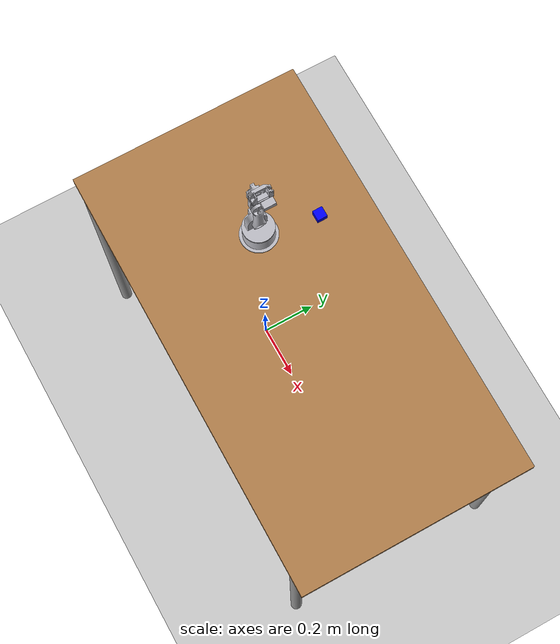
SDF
<sdf version="1.7">
 <world name="default">
  <light name="sun" type="directional">
   <pose>0 0 10 0 -0 0</pose>
   <diffuse>0.8 0.8 0.8 1</diffuse>
   <specular>0.2 0.2 0.2 1</specular>
   <attenuation>
    <range>1000</range>
    <constant>0.9</constant>
    <linear>0.01</linear>
    <quadratic>0.001</quadratic>
   </attenuation>
   <direction>-0.5 0.1 -0.9</direction>
   <spot><inner_angle>0</inner_angle><outer_angle>0</outer_angle><falloff>0</falloff></spot>
  </light>
  <model name="ground_plane">
   <static>1</static>
   <link name="link">
    <collision name="collision">
     <geometry><plane><normal>0 0 1</normal><size>100 100</size></plane></geometry>
     <surface><friction><ode><mu>100</mu><mu2>50</mu2></ode></friction></surface>
    </collision>
    <visual name="visual">
     <cast_shadows>0</cast_shadows>
     <geometry><plane><normal>0 0 1</normal><size>100 100</size></plane></geometry>
     <material>
      <script><uri>file://media/materials/scripts/gazebo.material</uri><name>Gazebo/Grey</name></script>
     </material>
    </visual>
   </link>
  </model>
  <gravity>0 0 -9.8</gravity>
  <magnetic_field>6e-06 2.3e-05 -4.2e-05</magnetic_field>
  <atmosphere type="adiabatic"/>
  <physics name="default_physics" default="0" type="ode">
   <max_step_size>0.001</max_step_size>
   <real_time_factor>1</real_time_factor>
   <real_time_update_rate>1000</real_time_update_rate>
  </physics>
  <scene><ambient>0.4 0.4 0.4 1</ambient><background>0.7 0.7 0.7 1</background><shadows>1</shadows></scene>
  <audio><device>default</device></audio>
  <spherical_coordinates>
   <surface_model>EARTH_WGS84</surface_model>
   <latitude_deg>0</latitude_deg>
   <longitude_deg>0</longitude_deg>
   <elevation>0</elevation>
   <heading_deg>0</heading_deg>
  </spherical_coordinates>
  <model name="table">
   <static>1</static>
   <link name="link">
    <collision name="surface">
     <pose>0 0 1 0 -0 0</pose>
     <geometry><box><size>1.5 0.8 0.03</size></box></geometry>
     <surface><friction><ode><mu>0.6</mu><mu2>0.6</mu2></ode></friction></surface>
    </collision>
    <visual name="visual1">
     <pose>0 0 1 0 -0 0</pose>
     <geometry><box><size>1.5 0.8 0.03</size></box></geometry>
     <material>
      <script><uri>file://media/materials/scripts/gazebo.material</uri><name>Gazebo/Wood</name></script>
     </material>
    </visual>
    <collision name="front_left_leg">
     <pose>0.68 0.38 0.5 0 -0 0</pose>
     <geometry><cylinder><radius>0.02</radius><length>1</length></cylinder></geometry>
    </collision>
    <visual name="front_left_leg">
     <pose>0.68 0.38 0.5 0 -0 0</pose>
     <geometry><cylinder><radius>0.02</radius><length>1</length></cylinder></geometry>
     <material>
      <script><uri>file://media/materials/scripts/gazebo.material</uri><name>Gazebo/Grey</name></script>
     </material>
    </visual>
    <collision name="front_right_leg">
     <pose>0.68 -0.38 0.5 0 -0 0</pose>
     <geometry><cylinder><radius>0.02</radius><length>1</length></cylinder></geometry>
    </collision>
    <visual name="front_right_leg">
     <pose>0.68 -0.38 0.5 0 -0 0</pose>
     <geometry><cylinder><radius>0.02</radius><length>1</length></cylinder></geometry>
     <material>
      <script><uri>file://media/materials/scripts/gazebo.material</uri><name>Gazebo/Grey</name></script>
     </material>
    </visual>
    <collision name="back_right_leg">
     <pose>-0.68 -0.38 0.5 0 -0 0</pose>
     <geometry><cylinder><radius>0.02</radius><length>1</length></cylinder></geometry>
    </collision>
    <visual name="back_right_leg">
     <pose>-0.68 -0.38 0.5 0 -0 0</pose>
     <geometry><cylinder><radius>0.02</radius><length>1</length></cylinder></geometry>
     <material>
      <script><uri>file://media/materials/scripts/gazebo.material</uri><name>Gazebo/Grey</name></script>
     </material>
    </visual>
    <collision name="back_left_leg">
     <pose>-0.68 0.38 0.5 0 -0 0</pose>
     <geometry><cylinder><radius>0.02</radius><length>1</length></cylinder></geometry>
    </collision>
    <visual name="back_left_leg">
     <pose>-0.68 0.38 0.5 0 -0 0</pose>
     <geometry><cylinder><radius>0.02</radius><length>1</length></cylinder></geometry>
     <material>
      <script><uri>file://media/materials/scripts/gazebo.material</uri><name>Gazebo/Grey</name></script>
     </material>
    </visual>
   </link>
   <pose>0.286971 -0.023322 0 0 -0 0</pose>
  </model>
  <model name="unit_box_blue">
   <link name="link">
    <inertial>
     <mass>1</mass>
     <inertia>
      <ixx>0.166667</ixx>
      <ixy>0</ixy>
      <ixz>0</ixz>
      <iyy>0.166667</iyy>
      <iyz>0</iyz>
      <izz>0.166667</izz>
     </inertia>
    </inertial>
    <visual name="visual">
     <geometry><box><size>0.036269 0.034595 0.020419</size></box></geometry>
     <material>
      <script><name>Gazebo/Grey</name><uri>file://media/materials/scripts/gazebo.material</uri></script>
      <ambient>0 0 1 0</ambient>
      <shader type="vertex"><normal_map>__default__</normal_map></shader>
      <diffuse>0.7 0.7 0.7 1</diffuse>
      <specular>0.01 0.01 0.01 1</specular>
      <emissive>0 0 0 1</emissive>
     </material>
    </visual>
    <collision name="collision">
     <geometry><box><size>0.036269 0.034595 0.020419</size></box></geometry>
     <surface>
      <friction>
       <ode><mu>1</mu><mu2>1</mu2><fdir1>0 0 0</fdir1><slip1>0</slip1><slip2>0</slip2></ode>
       <torsional>
        <coefficient>1</coefficient>
        <patch_radius>0</patch_radius>
        <surface_radius>0</surface_radius>
        <use_patch_radius>1</use_patch_radius>
        <ode><slip>0</slip></ode>
       </torsional>
      </friction>
      <bounce><restitution_coefficient>0</restitution_coefficient><threshold>1e+06</threshold></bounce>
      <contact>
       <collide_without_contact>0</collide_without_contact>
       <collide_without_contact_bitmask>1</collide_without_contact_bitmask>
       <collide_bitmask>1</collide_bitmask>
       <ode>
        <soft_cfm>0</soft_cfm>
        <soft_erp>0.2</soft_erp>
        <kp>1e+13</kp>
        <kd>1</kd>
        <max_vel>0.01</max_vel>
        <min_depth>0</min_depth>
       </ode>
       <bullet>
        <split_impulse>1</split_impulse>
        <split_impulse_penetration_threshold>-0.01</split_impulse_penetration_threshold>
        <soft_cfm>0</soft_cfm>
        <soft_erp>0.2</soft_erp>
        <kp>1e+13</kp>
        <kd>1</kd>
       </bullet>
      </contact>
     </surface>
    </collision>
   </link>
   <static>0</static>
   <pose>0.024487 0.20386 1.02521 6e-06 -2e-06 5.6e-05</pose>
  </model>
  <model name="robotic_arm">
   <joint name="world_to_base_link" type="fixed">
    <pose relative_to="__model__">0 0 0 0 -0 0</pose>
    <parent>world</parent>
    <child>base_link</child>
   </joint>
   <link name="base_link">
    <pose relative_to="world_to_base_link">0 0 0 0 -0 0</pose>
    <inertial>
     <pose>0.001448 -0.000165 0.028288 0 -0 0</pose>
     <mass>0.242599</mass>
     <inertia>
      <ixx>0.000296</ixx>
      <ixy>0</ixy>
      <ixz>-2e-06</ixz>
      <iyy>0.000316</iyy>
      <iyz>0</iyz>
      <izz>0.000468</izz>
     </inertia>
    </inertial>
    <collision name="base_link_collision">
     <geometry>
      <mesh>
       <scale>0.001 0.001 0.001</scale>
       <uri>/home/sharpop/Documents/crais_ws/src/arm_description/meshes/base_link.stl</uri>
      </mesh>
     </geometry>
     <surface><friction><ode><mu>0.2</mu><mu2>0.2</mu2></ode></friction></surface>
    </collision>
    <visual name="base_link_visual">
     <geometry>
      <mesh>
       <scale>0.001 0.001 0.001</scale>
       <uri>/home/sharpop/Documents/crais_ws/src/arm_description/meshes/base_link.stl</uri>
      </mesh>
     </geometry>
     <material>
      <script><name>Gazebo/Silver</name><uri>file://media/materials/scripts/gazebo.material</uri></script>
     </material>
    </visual>
    <self_collide>1</self_collide>
   </link>
   <joint name="rev_base" type="revolute">
    <pose relative_to="base_link">0.001 -0.0002 0.06 0 -0 0</pose>
    <parent>base_link</parent>
    <child>waist_1</child>
    <axis>
     <xyz>0 0 1</xyz>
     <limit><lower>-1e+16</lower><upper>1e+16</upper></limit>
     <dynamics>
      <damping>10</damping>
      <friction>100</friction>
      <spring_reference>0</spring_reference>
      <spring_stiffness>0</spring_stiffness>
     </dynamics>
    </axis>
   </joint>
   <link name="waist_1">
    <pose relative_to="rev_base">0 0 0 0 -0 0</pose>
    <inertial>
     <pose>-0.011987 4.5e-05 0.025606 0 -0 0</pose>
     <mass>0.160871</mass>
     <inertia>
      <ixx>0.000137</ixx>
      <ixy>0</ixy>
      <ixz>2.2e-05</ixz>
      <iyy>0.000133</iyy>
      <iyz>0</iyz>
      <izz>0.000128</izz>
     </inertia>
    </inertial>
    <collision name="waist_1_collision">
     <pose>-0.001 0.0002 -0.06 0 -0 0</pose>
     <geometry>
      <mesh>
       <scale>0.001 0.001 0.001</scale>
       <uri>/home/sharpop/Documents/crais_ws/src/arm_description/meshes/waist_1.stl</uri>
      </mesh>
     </geometry>
     <surface><friction><ode><mu>0.2</mu><mu2>0.2</mu2></ode></friction></surface>
    </collision>
    <visual name="waist_1_visual">
     <pose>-0.001 0.0002 -0.06 0 -0 0</pose>
     <geometry>
      <mesh>
       <scale>0.001 0.001 0.001</scale>
       <uri>/home/sharpop/Documents/crais_ws/src/arm_description/meshes/waist_1.stl</uri>
      </mesh>
     </geometry>
     <material>
      <script><name>Gazebo/Silver</name><uri>file://media/materials/scripts/gazebo.material</uri></script>
     </material>
    </visual>
    <self_collide>1</self_collide>
   </link>
   <joint name="rev_waist" type="revolute">
    <pose relative_to="waist_1">-0.0032 0 0.04675 0 -0 0</pose>
    <parent>waist_1</parent>
    <child>arm_1_1</child>
    <axis>
     <xyz>-1 0 0</xyz>
     <limit><lower>-1e+16</lower><upper>1e+16</upper></limit>
     <dynamics><spring_reference>0</spring_reference><spring_stiffness>0</spring_stiffness></dynamics>
    </axis>
   </joint>
   <link name="arm_1_1">
    <pose relative_to="rev_waist">0 0 0 0 -0 0</pose>
    <inertial>
     <pose>0.010989 0 0.059205 0 -0 0</pose>
     <mass>0.0798611</mass>
     <inertia><ixx>0.00014</ixx><ixy>0</ixy><ixz>0</ixz><iyy>0.000134</iyy><iyz>0</iyz><izz>1.1e-05</izz></inertia>
    </inertial>
    <collision name="arm_1_1_collision">
     <pose>0.0022 0.0002 -0.10675 0 -0 0</pose>
     <geometry>
      <mesh>
       <scale>0.001 0.001 0.001</scale>
       <uri>/home/sharpop/Documents/crais_ws/src/arm_description/meshes/arm_1_1.stl</uri>
      </mesh>
     </geometry>
     <surface><friction><ode><mu>0.2</mu><mu2>0.2</mu2></ode></friction></surface>
    </collision>
    <visual name="arm_1_1_visual">
     <pose>0.0022 0.0002 -0.10675 0 -0 0</pose>
     <geometry>
      <mesh>
       <scale>0.001 0.001 0.001</scale>
       <uri>/home/sharpop/Documents/crais_ws/src/arm_description/meshes/arm_1_1.stl</uri>
      </mesh>
     </geometry>
     <material>
      <script><name>Gazebo/Silver</name><uri>file://media/materials/scripts/gazebo.material</uri></script>
     </material>
    </visual>
    <self_collide>1</self_collide>
   </link>
   <joint name="rev_elbow" type="revolute">
    <pose relative_to="arm_1_1">0.0032 0 0.12 0 -0 0</pose>
    <parent>arm_1_1</parent>
    <child>arm_2_1</child>
    <axis>
     <xyz>-1 0 0</xyz>
     <limit><lower>-1e+16</lower><upper>1e+16</upper></limit>
     <dynamics><spring_reference>0</spring_reference><spring_stiffness>0</spring_stiffness></dynamics>
    </axis>
   </joint>
   <link name="arm_2_1">
    <pose relative_to="rev_elbow">0 0 0 0 -0 0</pose>
    <inertial>
     <pose>-0.017086 0.000108 0.031055 0 -0 0</pose>
     <mass>0.114093</mass>
     <inertia>
      <ixx>0.000121</ixx>
      <ixy>0</ixy>
      <ixz>-1.5e-05</ixz>
      <iyy>0.000129</iyy>
      <iyz>0</iyz>
      <izz>2.8e-05</izz>
     </inertia>
    </inertial>
    <collision name="arm_2_1_collision">
     <pose>-0.001 0.0002 -0.22675 0 -0 0</pose>
     <geometry>
      <mesh>
       <scale>0.001 0.001 0.001</scale>
       <uri>/home/sharpop/Documents/crais_ws/src/arm_description/meshes/arm_2_1.stl</uri>
      </mesh>
     </geometry>
     <surface><friction><ode><mu>0.2</mu><mu2>0.2</mu2></ode></friction></surface>
    </collision>
    <visual name="arm_2_1_visual">
     <pose>-0.001 0.0002 -0.22675 0 -0 0</pose>
     <geometry>
      <mesh>
       <scale>0.001 0.001 0.001</scale>
       <uri>/home/sharpop/Documents/crais_ws/src/arm_description/meshes/arm_2_1.stl</uri>
      </mesh>
     </geometry>
     <material>
      <script><name>Gazebo/Silver</name><uri>file://media/materials/scripts/gazebo.material</uri></script>
     </material>
    </visual>
    <self_collide>1</self_collide>
   </link>
   <joint name="rev_wrist_arm" type="revolute">
    <pose relative_to="arm_2_1">-0.0107 0.0053 0.08975 0 -0 0</pose>
    <parent>arm_2_1</parent>
    <child>arm_3_1</child>
    <axis>
     <xyz>0 0 1</xyz>
     <limit><lower>-1e+16</lower><upper>1e+16</upper></limit>
     <dynamics><spring_reference>0</spring_reference><spring_stiffness>0</spring_stiffness></dynamics>
    </axis>
   </joint>
   <link name="arm_3_1">
    <pose relative_to="rev_wrist_arm">0 0 0 0 -0 0</pose>
    <inertial>
     <pose>0.003061 -0.005032 0.021377 0 -0 0</pose>
     <mass>0.0295362</mass>
     <inertia><ixx>7e-06</ixx><ixy>0</ixy><ixz>-1e-06</ixz><iyy>6e-06</iyy><iyz>0</iyz><izz>4e-06</izz></inertia>
    </inertial>
    <collision name="arm_3_1_collision">
     <pose>0.0097 -0.0051 -0.3165 0 -0 0</pose>
     <geometry>
      <mesh>
       <scale>0.001 0.001 0.001</scale>
       <uri>/home/sharpop/Documents/crais_ws/src/arm_description/meshes/arm_3_1.stl</uri>
      </mesh>
     </geometry>
     <surface><friction><ode><mu>0.2</mu><mu2>0.2</mu2></ode></friction></surface>
    </collision>
    <visual name="arm_3_1_visual">
     <pose>0.0097 -0.0051 -0.3165 0 -0 0</pose>
     <geometry>
      <mesh>
       <scale>0.001 0.001 0.001</scale>
       <uri>/home/sharpop/Documents/crais_ws/src/arm_description/meshes/arm_3_1.stl</uri>
      </mesh>
     </geometry>
     <material>
      <script><name>Gazebo/Silver</name><uri>file://media/materials/scripts/gazebo.material</uri></script>
     </material>
    </visual>
    <self_collide>1</self_collide>
   </link>
   <joint name="rev_effector" type="revolute">
    <pose relative_to="arm_3_1">0.01535 -0.005 0.02995 0 -0 0</pose>
    <parent>arm_3_1</parent>
    <child>flange_adaptor_2</child>
    <axis>
     <xyz>1 0 0</xyz>
     <limit><lower>-1e+16</lower><upper>1e+16</upper></limit>
     <dynamics><spring_reference>0</spring_reference><spring_stiffness>0</spring_stiffness></dynamics>
    </axis>
   </joint>
   <link name="flange_adaptor_2">
    <pose relative_to="rev_effector">0 0 0 0 -0 0</pose>
    <inertial>
     <pose>0.032429 0.004428 0.025805 0 -0 0</pose>
     <mass>0.0747999</mass>
     <inertia>
      <ixx>3.2e-05</ixx>
      <ixy>-5e-06</ixy>
      <ixz>-3e-06</ixz>
      <iyy>3.5e-05</iyy>
      <iyz>0</iyz>
      <izz>4.4e-05</izz>
     </inertia>
    </inertial>
    <collision name="flange_adaptor_2_collision">
     <pose>-0.00565 -0.0001 -0.34645 0 -0 0</pose>
     <geometry>
      <mesh>
       <scale>0.001 0.001 0.001</scale>
       <uri>/home/sharpop/Documents/crais_ws/src/arm_description/meshes/flange_adaptor_2.stl</uri>
      </mesh>
     </geometry>
     <surface><friction><ode><mu>1</mu><mu2>1</mu2></ode></friction></surface>
    </collision>
    <visual name="flange_adaptor_2_visual">
     <pose>-0.00565 -0.0001 -0.34645 0 -0 0</pose>
     <geometry>
      <mesh>
       <scale>0.001 0.001 0.001</scale>
       <uri>/home/sharpop/Documents/crais_ws/src/arm_description/meshes/flange_adaptor_2.stl</uri>
      </mesh>
     </geometry>
     <material>
      <script><name>Gazebo/Silver</name><uri>file://media/materials/scripts/gazebo.material</uri></script>
     </material>
    </visual>
    <self_collide>1</self_collide>
   </link>
   <joint name="lfinger_slider" type="prismatic">
    <pose relative_to="flange_adaptor_2">0.0453 0.0325 0.042131 0 -0 0</pose>
    <parent>flange_adaptor_2</parent>
    <child>grip_finger_left_2</child>
    <axis>
     <xyz>0 -1 0</xyz>
     <limit><lower>0</lower><upper>0.0175</upper><effort>100</effort><velocity>100</velocity></limit>
     <dynamics><spring_reference>0</spring_reference><spring_stiffness>0</spring_stiffness></dynamics>
    </axis>
   </joint>
   <link name="grip_finger_left_2">
    <pose relative_to="lfinger_slider">0 0 0 0 -0 0</pose>
    <inertial>
     <pose>-0.0147 -0.008314 0.008946 0 -0 0</pose>
     <mass>0.0102843</mass>
     <inertia><ixx>3e-06</ixx><ixy>0</ixy><ixz>-1e-06</ixz><iyy>3e-06</iyy><iyz>0</iyz><izz>1e-06</izz></inertia>
    </inertial>
    <collision name="grip_finger_left_2_collision">
     <pose>-0.05095 -0.0326 -0.388581 0 -0 0</pose>
     <geometry>
      <mesh>
       <scale>0.001 0.001 0.001</scale>
       <uri>/home/sharpop/Documents/crais_ws/src/arm_description/meshes/grip_finger_left_2.stl</uri>
      </mesh>
     </geometry>
     <surface><friction><ode><mu>0.2</mu><mu2>0.2</mu2></ode></friction></surface>
    </collision>
    <visual name="grip_finger_left_2_visual">
     <pose>-0.05095 -0.0326 -0.388581 0 -0 0</pose>
     <geometry>
      <mesh>
       <scale>0.001 0.001 0.001</scale>
       <uri>/home/sharpop/Documents/crais_ws/src/arm_description/meshes/grip_finger_left_2.stl</uri>
      </mesh>
     </geometry>
     <material>
      <script><name>Gazebo/Silver</name><uri>file://media/materials/scripts/gazebo.material</uri></script>
     </material>
    </visual>
    <self_collide>1</self_collide>
   </link>
   <joint name="rfinger_slider" type="prismatic">
    <pose relative_to="flange_adaptor_2">0.0453 -0.0325 0.042131 0 -0 0</pose>
    <parent>flange_adaptor_2</parent>
    <child>grip_finger_right_2</child>
    <axis>
     <xyz>0 1 0</xyz>
     <limit><lower>0</lower><upper>0.0175</upper><effort>100</effort><velocity>100</velocity></limit>
     <dynamics><spring_reference>0</spring_reference><spring_stiffness>0</spring_stiffness></dynamics>
    </axis>
   </joint>
   <link name="grip_finger_right_2">
    <pose relative_to="rfinger_slider">0 0 0 0 -0 0</pose>
    <inertial>
     <pose>-0.0132 0.006866 0.013584 0 -0 0</pose>
     <mass>0.00872141</mass>
     <inertia><ixx>1e-06</ixx><ixy>0</ixy><ixz>0</ixz><iyy>2e-06</iyy><iyz>0</iyz><izz>1e-06</izz></inertia>
    </inertial>
    <collision name="grip_finger_right_2_collision">
     <pose>-0.05095 0.0324 -0.388581 0 -0 0</pose>
     <geometry>
      <mesh>
       <scale>0.001 0.001 0.001</scale>
       <uri>/home/sharpop/Documents/crais_ws/src/arm_description/meshes/grip_finger_right_2.stl</uri>
      </mesh>
     </geometry>
     <surface><friction><ode><mu>1</mu><mu2>1</mu2></ode></friction></surface>
    </collision>
    <visual name="grip_finger_right_2_visual">
     <pose>-0.05095 0.0324 -0.388581 0 -0 0</pose>
     <geometry>
      <mesh>
       <scale>0.001 0.001 0.001</scale>
       <uri>/home/sharpop/Documents/crais_ws/src/arm_description/meshes/grip_finger_right_2.stl</uri>
      </mesh>
     </geometry>
     <material>
      <script><name>Gazebo/Silver</name><uri>file://media/materials/scripts/gazebo.material</uri></script>
     </material>
    </visual>
    <self_collide>1</self_collide>
   </link>
   <plugin name="control" filename="libgazebo_ros_control.so"><robotNamespace>/</robotNamespace></plugin>
   <static>0</static>
   <plugin name="gazebo_grasp_fix" filename="libgazebo_grasp_fix.so">
    <arm>
     <arm_name>arm</arm_name>
     <palm_link>flange_adaptor_2</palm_link>
     <gripper_link>grip_finger_right_2</gripper_link>
     <gripper_link>grip_finger_left_2</gripper_link>
    </arm>
    <forces_angle_tolerance>100</forces_angle_tolerance>
    <update_rate>4</update_rate>
    <grip_count_threshold>4</grip_count_threshold>
    <max_grip_count>8</max_grip_count>
    <release_tolerance>0.005</release_tolerance>
    <disable_collisions_on_attach>0</disable_collisions_on_attach>
    <contact_topic>__default_topic__</contact_topic>
    <robotNamespace>/</robotNamespace>
   </plugin>
   <pose>-0 -0 1.06 -1e-05 1e-06 0</pose>
  </model>
 </world>
</sdf>
